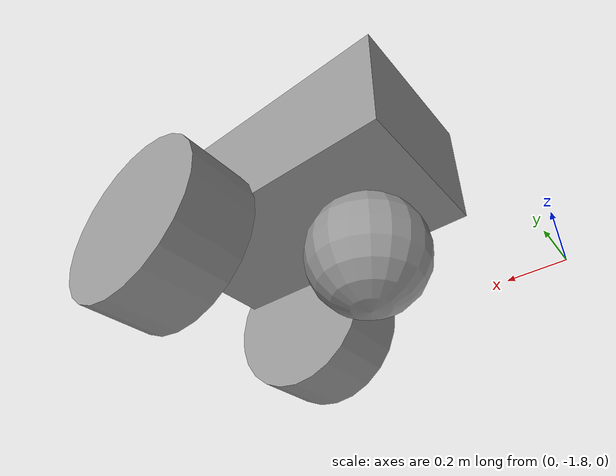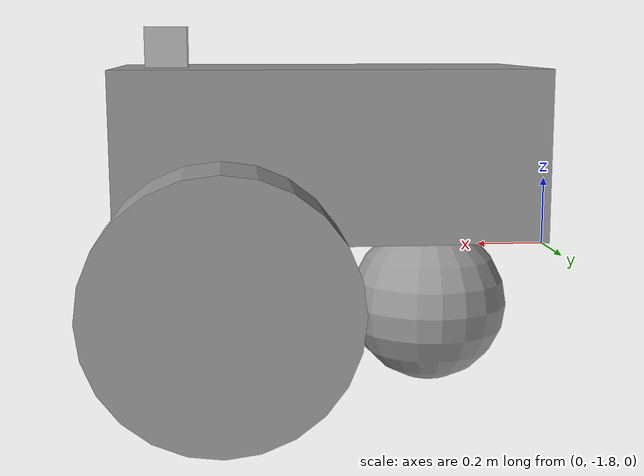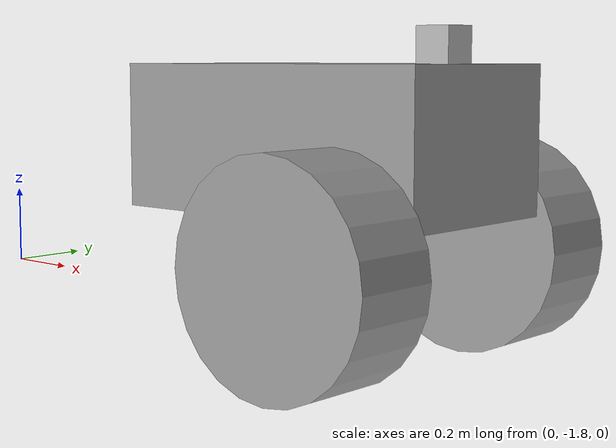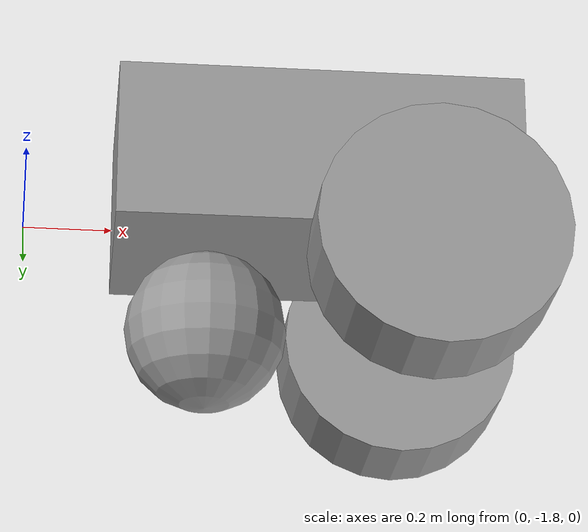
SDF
<?xml version='1.0'?>
<sdf version='1.6'>
  <model name='Vehicle'>
    <link name='link_0'>
      <pose frame=''>0.713801 -1.30166 0.350461 0 -0 0</pose>
      <inertial>
        <mass>0.200247</mass>
        <inertia>
          <ixx>0.00713754</ixx>
          <ixy>0</ixy>
          <ixz>0</ixz>
          <iyy>0.0190031</iyy>
          <iyz>0</iyz>
          <izz>0.021509</izz>
        </inertia>
        <pose frame=''>0 0 0 0 -0 0</pose>
      </inertial>
      <self_collide>0</self_collide>
      <kinematic>0</kinematic>
      <visual name='visual'>
        <pose frame=''>0 0 0 0 -0 0</pose>
        <geometry>
          <box>
            <size>1 0.537524 0.4</size>
          </box>
        </geometry>
        <material>
          <lighting>1</lighting>
          <script>
            <uri>file://media/materials/scripts/gazebo.material</uri>
            <name>Gazebo/Grey</name>
          </script>
          <ambient>0.3 0.3 0.3 1</ambient>
          <diffuse>0.7 0.7 0.7 1</diffuse>
          <specular>0.01 0.01 0.01 1</specular>
          <emissive>0 0 0 1</emissive>
          <shader type='vertex'>
            <normal_map>__default__</normal_map>
          </shader>
        </material>
        <transparency>0</transparency>
        <cast_shadows>1</cast_shadows>
      </visual>
      <collision name='collision'>
        <laser_retro>0</laser_retro>
        <max_contacts>10</max_contacts>
        <pose frame=''>0 0 0 0 -0 0</pose>
        <geometry>
          <box>
            <size>1 0.537525 0.4</size>
          </box>
        </geometry>
        <surface>
          <friction>
            <ode>
              <mu>1</mu>
              <mu2>1</mu2>
              <fdir1>0 0 0</fdir1>
              <slip1>0</slip1>
              <slip2>0</slip2>
            </ode>
            <torsional>
              <coefficient>1</coefficient>
              <patch_radius>0</patch_radius>
              <surface_radius>0</surface_radius>
              <use_patch_radius>1</use_patch_radius>
              <ode>
                <slip>0</slip>
              </ode>
            </torsional>
          </friction>
          <bounce>
            <restitution_coefficient>0</restitution_coefficient>
            <threshold>1e+06</threshold>
          </bounce>
          <contact>
            <collide_without_contact>0</collide_without_contact>
            <collide_without_contact_bitmask>1</collide_without_contact_bitmask>
            <collide_bitmask>1</collide_bitmask>
            <ode>
              <soft_cfm>0</soft_cfm>
              <soft_erp>0.2</soft_erp>
              <kp>1e+13</kp>
              <kd>1</kd>
              <max_vel>0.01</max_vel>
              <min_depth>0</min_depth>
            </ode>
            <bullet>
              <split_impulse>1</split_impulse>
              <split_impulse_penetration_threshold>-0.01</split_impulse_penetration_threshold>
              <soft_cfm>0</soft_cfm>
              <soft_erp>0.2</soft_erp>
              <kp>1e+13</kp>
              <kd>1</kd>
            </bullet>
          </contact>
        </surface>
      </collision>
    </link>
    <link name='link_1_clone_clone'>
      <pose frame=''>0.970537 -1.6986 0.050461 1.5707 -0 0</pose>
      <inertial>
        <mass>1</mass>
        <inertia>
          <ixx>0.145833</ixx>
          <ixy>0</ixy>
          <ixz>0</ixz>
          <iyy>0.145833</iyy>
          <iyz>0</iyz>
          <izz>0.125</izz>
        </inertia>
        <pose frame=''>0 0 0 0 -0 0</pose>
      </inertial>
      <self_collide>0</self_collide>
      <kinematic>0</kinematic>
      <visual name='visual'>
        <pose frame=''>0 0 0 0 -0 0</pose>
        <geometry>
          <cylinder>
            <radius>0.3</radius>
            <length>0.25</length>
          </cylinder>
        </geometry>
        <material>
          <lighting>1</lighting>
          <script>
            <uri>file://media/materials/scripts/gazebo.material</uri>
            <name>Gazebo/Grey</name>
          </script>
          <ambient>0.3 0.3 0.3 1</ambient>
          <diffuse>0.7 0.7 0.7 1</diffuse>
          <specular>0.01 0.01 0.01 1</specular>
          <emissive>0 0 0 1</emissive>
          <shader type='vertex'>
            <normal_map>__default__</normal_map>
          </shader>
        </material>
        <transparency>0</transparency>
        <cast_shadows>1</cast_shadows>
      </visual>
      <collision name='collision'>
        <laser_retro>0</laser_retro>
        <max_contacts>10</max_contacts>
        <pose frame=''>0 0 0 0 -0 0</pose>
        <geometry>
          <cylinder>
            <radius>0.3</radius>
            <length>0.25</length>
          </cylinder>
        </geometry>
        <surface>
          <friction>
            <ode>
              <mu>1</mu>
              <mu2>1</mu2>
              <fdir1>0 0 0</fdir1>
              <slip1>0</slip1>
              <slip2>0</slip2>
            </ode>
            <torsional>
              <coefficient>1</coefficient>
              <patch_radius>0</patch_radius>
              <surface_radius>0</surface_radius>
              <use_patch_radius>1</use_patch_radius>
              <ode>
                <slip>0</slip>
              </ode>
            </torsional>
          </friction>
          <bounce>
            <restitution_coefficient>0</restitution_coefficient>
            <threshold>1e+06</threshold>
          </bounce>
          <contact>
            <collide_without_contact>0</collide_without_contact>
            <collide_without_contact_bitmask>1</collide_without_contact_bitmask>
            <collide_bitmask>1</collide_bitmask>
            <ode>
              <soft_cfm>0</soft_cfm>
              <soft_erp>0.2</soft_erp>
              <kp>1e+13</kp>
              <kd>1</kd>
              <max_vel>0.01</max_vel>
              <min_depth>0</min_depth>
            </ode>
            <bullet>
              <split_impulse>1</split_impulse>
              <split_impulse_penetration_threshold>-0.01</split_impulse_penetration_threshold>
              <soft_cfm>0</soft_cfm>
              <soft_erp>0.2</soft_erp>
              <kp>1e+13</kp>
              <kd>1</kd>
            </bullet>
          </contact>
        </surface>
      </collision>
    </link>
    <link name='link_1_clone_clone_clone'>
      <pose frame=''>0.970537 -0.91102 0.050461 1.5707 -0 0</pose>
      <inertial>
        <mass>1</mass>
        <inertia>
          <ixx>0.145833</ixx>
          <ixy>0</ixy>
          <ixz>0</ixz>
          <iyy>0.145833</iyy>
          <iyz>0</iyz>
          <izz>0.125</izz>
        </inertia>
        <pose frame=''>0 0 0 0 -0 0</pose>
      </inertial>
      <self_collide>0</self_collide>
      <kinematic>0</kinematic>
      <visual name='visual'>
        <pose frame=''>0 0 0 0 -0 0</pose>
        <geometry>
          <cylinder>
            <radius>0.3</radius>
            <length>0.25</length>
          </cylinder>
        </geometry>
        <material>
          <lighting>1</lighting>
          <script>
            <uri>file://media/materials/scripts/gazebo.material</uri>
            <name>Gazebo/Grey</name>
          </script>
          <ambient>0.3 0.3 0.3 1</ambient>
          <diffuse>0.7 0.7 0.7 1</diffuse>
          <specular>0.01 0.01 0.01 1</specular>
          <emissive>0 0 0 1</emissive>
          <shader type='vertex'>
            <normal_map>__default__</normal_map>
          </shader>
        </material>
        <transparency>0</transparency>
        <cast_shadows>1</cast_shadows>
      </visual>
      <collision name='collision'>
        <laser_retro>0</laser_retro>
        <max_contacts>10</max_contacts>
        <pose frame=''>0 0 0 0 -0 0</pose>
        <geometry>
          <cylinder>
            <radius>0.3</radius>
            <length>0.25</length>
          </cylinder>
        </geometry>
        <surface>
          <friction>
            <ode>
              <mu>1</mu>
              <mu2>1</mu2>
              <fdir1>0 0 0</fdir1>
              <slip1>0</slip1>
              <slip2>0</slip2>
            </ode>
            <torsional>
              <coefficient>1</coefficient>
              <patch_radius>0</patch_radius>
              <surface_radius>0</surface_radius>
              <use_patch_radius>1</use_patch_radius>
              <ode>
                <slip>0</slip>
              </ode>
            </torsional>
          </friction>
          <bounce>
            <restitution_coefficient>0</restitution_coefficient>
            <threshold>1e+06</threshold>
          </bounce>
          <contact>
            <collide_without_contact>0</collide_without_contact>
            <collide_without_contact_bitmask>1</collide_without_contact_bitmask>
            <collide_bitmask>1</collide_bitmask>
            <ode>
              <soft_cfm>0</soft_cfm>
              <soft_erp>0.2</soft_erp>
              <kp>1e+13</kp>
              <kd>1</kd>
              <max_vel>0.01</max_vel>
              <min_depth>0</min_depth>
            </ode>
            <bullet>
              <split_impulse>1</split_impulse>
              <split_impulse_penetration_threshold>-0.01</split_impulse_penetration_threshold>
              <soft_cfm>0</soft_cfm>
              <soft_erp>0.2</soft_erp>
              <kp>1e+13</kp>
              <kd>1</kd>
            </bullet>
          </contact>
        </surface>
      </collision>
    </link>
    <link name='link_2'>
      <pose frame=''>0.446965 -1.3085 -0.049539 0 -0 0</pose>
      <inertial>
        <mass>1</mass>
        <inertia>
          <ixx>0.1</ixx>
          <ixy>0</ixy>
          <ixz>0</ixz>
          <iyy>0.1</iyy>
          <iyz>0</iyz>
          <izz>0.1</izz>
        </inertia>
        <pose frame=''>0 0 0 0 -0 0</pose>
      </inertial>
      <self_collide>0</self_collide>
      <kinematic>0</kinematic>
      <visual name='visual'>
        <pose frame=''>0 0 0 0 -0 0</pose>
        <geometry>
          <sphere>
            <radius>0.2</radius>
          </sphere>
        </geometry>
        <material>
          <lighting>1</lighting>
          <script>
            <uri>file://media/materials/scripts/gazebo.material</uri>
            <name>Gazebo/Grey</name>
          </script>
          <ambient>0.3 0.3 0.3 1</ambient>
          <diffuse>0.7 0.7 0.7 1</diffuse>
          <specular>0.01 0.01 0.01 1</specular>
          <emissive>0 0 0 1</emissive>
          <shader type='vertex'>
            <normal_map>__default__</normal_map>
          </shader>
        </material>
        <transparency>0</transparency>
        <cast_shadows>1</cast_shadows>
      </visual>
      <collision name='collision'>
        <laser_retro>0</laser_retro>
        <max_contacts>10</max_contacts>
        <pose frame=''>0 0 0 0 -0 0</pose>
        <geometry>
          <sphere>
            <radius>0.2</radius>
          </sphere>
        </geometry>
        <surface>
          <friction>
            <ode>
              <mu>1</mu>
              <mu2>1</mu2>
              <fdir1>0 0 0</fdir1>
              <slip1>0</slip1>
              <slip2>0</slip2>
            </ode>
            <torsional>
              <coefficient>1</coefficient>
              <patch_radius>0</patch_radius>
              <surface_radius>0</surface_radius>
              <use_patch_radius>1</use_patch_radius>
              <ode>
                <slip>0</slip>
              </ode>
            </torsional>
          </friction>
          <bounce>
            <restitution_coefficient>0</restitution_coefficient>
            <threshold>1e+06</threshold>
          </bounce>
          <contact>
            <collide_without_contact>0</collide_without_contact>
            <collide_without_contact_bitmask>1</collide_without_contact_bitmask>
            <collide_bitmask>1</collide_bitmask>
            <ode>
              <soft_cfm>0</soft_cfm>
              <soft_erp>0.2</soft_erp>
              <kp>1e+13</kp>
              <kd>1</kd>
              <max_vel>0.01</max_vel>
              <min_depth>0</min_depth>
            </ode>
            <bullet>
              <split_impulse>1</split_impulse>
              <split_impulse_penetration_threshold>-0.01</split_impulse_penetration_threshold>
              <soft_cfm>0</soft_cfm>
              <soft_erp>0.2</soft_erp>
              <kp>1e+13</kp>
              <kd>1</kd>
            </bullet>
          </contact>
        </surface>
      </collision>
    </link>
    <model name='camera'>
      <pose frame=''>1.09516 -1.29625 0.596311 0 -0 0</pose>
      <link name='link'>
        <inertial>
          <mass>0.1</mass>
          <inertia>
            <ixx>0.000166667</ixx>
            <iyy>0.000166667</iyy>
            <izz>0.000166667</izz>
            <ixy>0</ixy>
            <ixz>0</ixz>
            <iyz>0</iyz>
          </inertia>
        </inertial>
        <collision name='collision'>
          <geometry>
            <box>
              <size>0.1 0.1 0.1</size>
            </box>
          </geometry>
          <max_contacts>10</max_contacts>
          <surface>
            <contact>
              <ode/>
            </contact>
            <bounce/>
            <friction>
              <torsional>
                <ode/>
              </torsional>
              <ode/>
            </friction>
          </surface>
        </collision>
        <visual name='visual'>
          <geometry>
            <box>
              <size>0.1 0.1 0.1</size>
            </box>
          </geometry>
        </visual>
        <sensor name='camera' type='camera'>
          <camera name='__default__'>
            <horizontal_fov>1.047</horizontal_fov>
            <image>
              <width>320</width>
              <height>240</height>
            </image>
            <clip>
              <near>0.1</near>
              <far>100</far>
            </clip>
          </camera>
          <always_on>1</always_on>
          <update_rate>30</update_rate>
          <visualize>1</visualize>
        </sensor>
        <self_collide>0</self_collide>
        <kinematic>0</kinematic>
      </link>
    </model>
    <joint name='link_0_JOINT_4' type='ball'>
      <parent>link_0</parent>
      <child>link_2</child>
      <pose frame=''>0 0 0 0 -0 0</pose>
      <physics>
        <ode>
          <limit>
            <cfm>0</cfm>
            <erp>0.2</erp>
          </limit>
          <suspension>
            <cfm>0</cfm>
            <erp>0.2</erp>
          </suspension>
        </ode>
      </physics>
    </joint>
    <joint name='link_0_JOINT_7' type='revolute'>
      <parent>link_0</parent>
      <child>link_1_clone_clone_clone</child>
      <pose frame=''>0 0 0 0 -0 0</pose>
      <axis>
        <xyz>0 0 1</xyz>
        <use_parent_model_frame>0</use_parent_model_frame>
        <limit>
          <lower>-1.79769e+308</lower>
          <upper>1.79769e+308</upper>
          <effort>-1</effort>
          <velocity>-1</velocity>
        </limit>
        <dynamics>
          <spring_reference>0</spring_reference>
          <spring_stiffness>0</spring_stiffness>
          <damping>0</damping>
          <friction>0</friction>
        </dynamics>
      </axis>
      <physics>
        <ode>
          <limit>
            <cfm>0</cfm>
            <erp>0.2</erp>
          </limit>
          <suspension>
            <cfm>0</cfm>
            <erp>0.2</erp>
          </suspension>
        </ode>
      </physics>
    </joint>
    <joint name='link_0_JOINT_8' type='revolute'>
      <parent>link_0</parent>
      <child>link_1_clone_clone</child>
      <pose frame=''>0 0 0 0 -0 0</pose>
      <axis>
        <xyz>0 0 1</xyz>
        <use_parent_model_frame>0</use_parent_model_frame>
        <limit>
          <lower>-1.79769e+308</lower>
          <upper>1.79769e+308</upper>
          <effort>-1</effort>
          <velocity>-1</velocity>
        </limit>
        <dynamics>
          <spring_reference>0</spring_reference>
          <spring_stiffness>0</spring_stiffness>
          <damping>0</damping>
          <friction>0</friction>
        </dynamics>
      </axis>
      <physics>
        <ode>
          <limit>
            <cfm>0</cfm>
            <erp>0.2</erp>
          </limit>
          <suspension>
            <cfm>0</cfm>
            <erp>0.2</erp>
          </suspension>
        </ode>
      </physics>
    </joint>
    <joint name='link_0_JOINT_9' type='fixed'>
      <parent>link_0</parent>
      <child>camera::link</child>
      <pose frame=''>0 0 0 0 -0 0</pose>
      <physics>
        <ode>
          <limit>
            <cfm>0</cfm>
            <erp>0.2</erp>
          </limit>
          <suspension>
            <cfm>0</cfm>
            <erp>0.2</erp>
          </suspension>
        </ode>
      </physics>
    </joint>
    <static>0</static>
    <allow_auto_disable>1</allow_auto_disable>
    <plugin name='follower' filename='libFollowerPlugin.so'/>
  </model>
</sdf>
